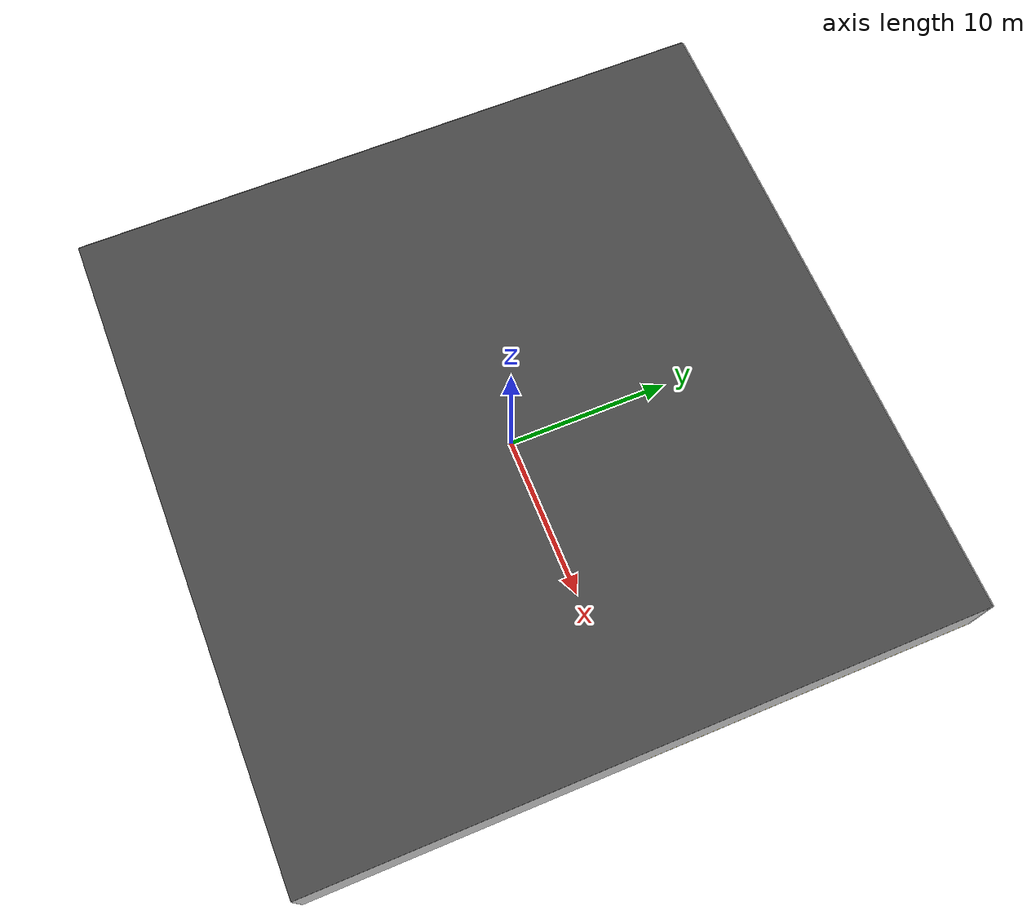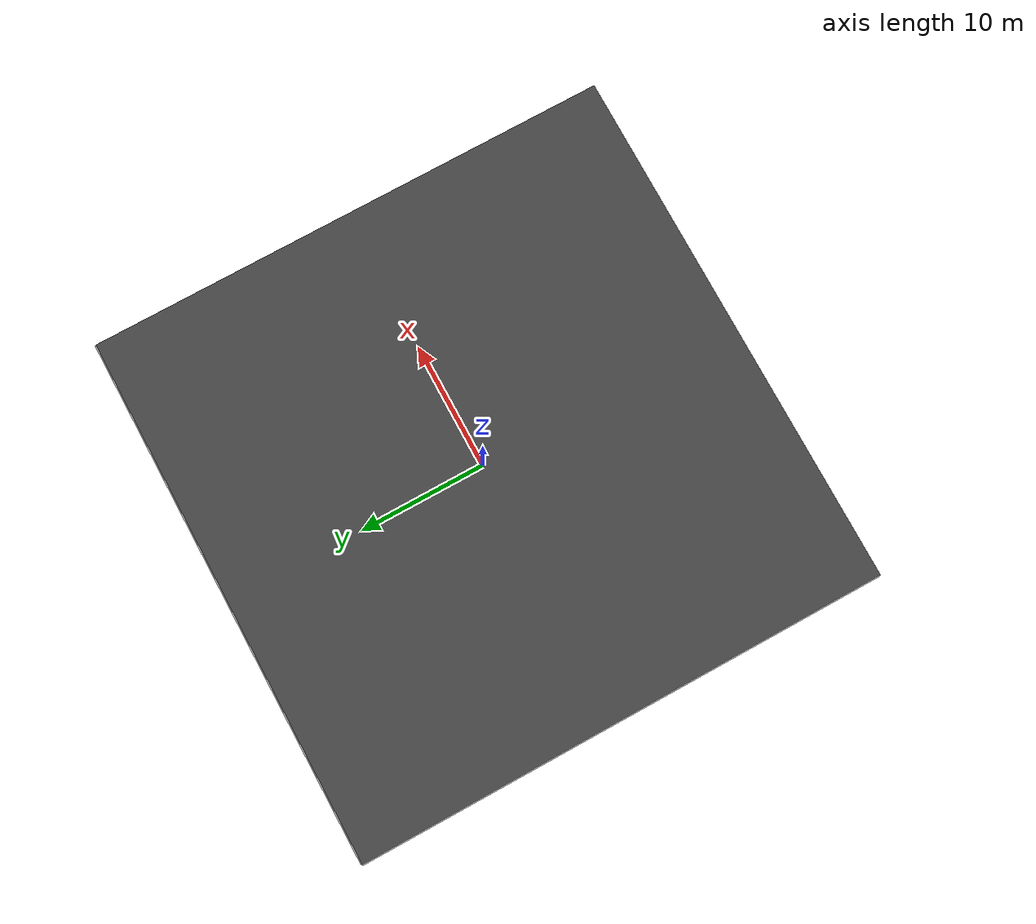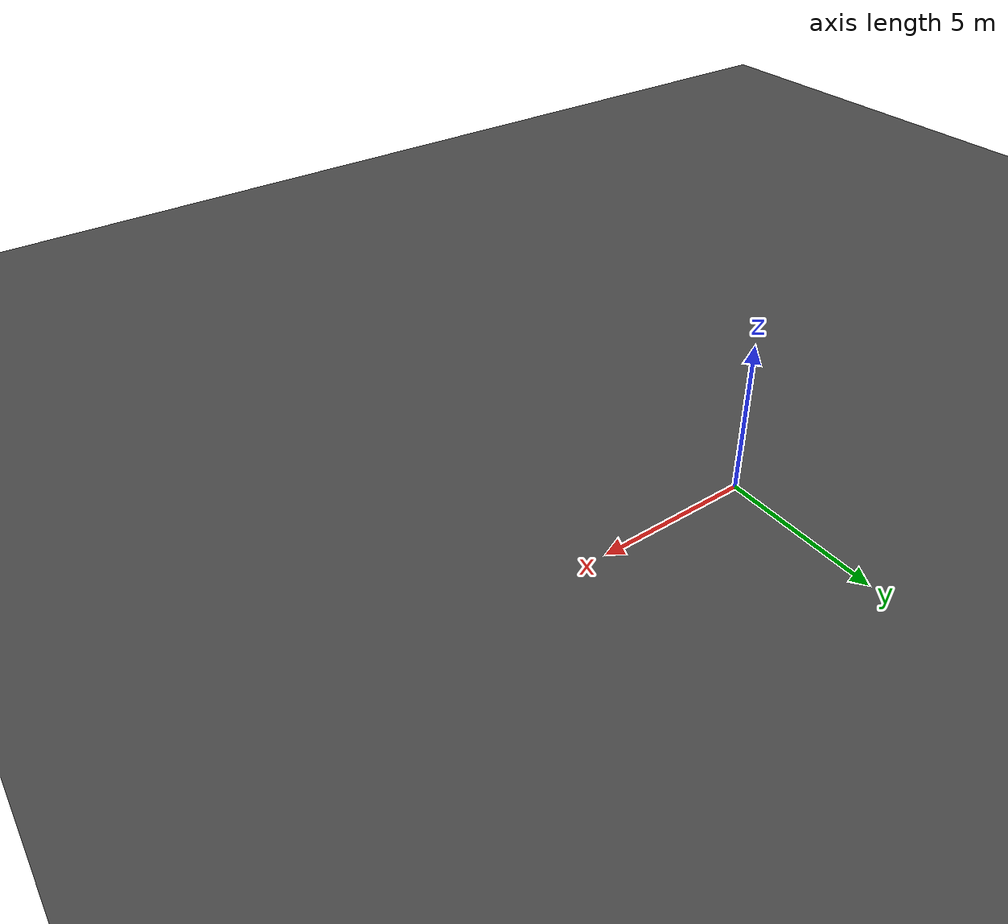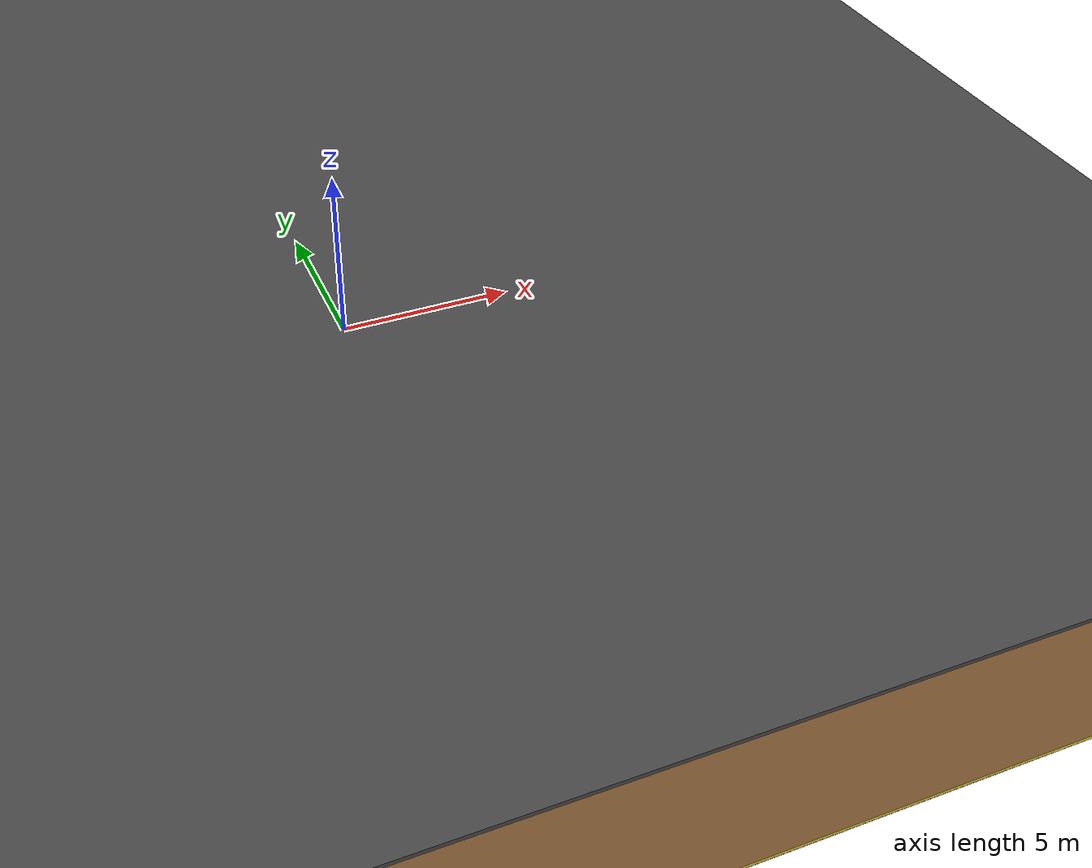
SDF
<sdf version="1.4">
 <world name="default">
  <physics type="ode">
   <max_step_size>0.001</max_step_size>
   <real_time_factor>1</real_time_factor>
   <real_time_update_rate>1000</real_time_update_rate>
   <gravity>0 0 -9.8</gravity>
  </physics>
  <scene><ambient>0.4 0.4 0.4 1</ambient><background>0.7 0.7 0.7 1</background><shadows>1</shadows></scene>
  <model name="Surrounding">
   <static>1</static>
   <link name="Ceiling">
    <collision name="Ceiling_Collision"><geometry><box><size>40 40 0.1</size></box></geometry></collision>
    <visual name="Ceiling_Visual">
     <geometry><box><size>40 40 0.1</size></box></geometry>
     <material>
      <script><uri>file://media/materials/scripts/gazebo.material</uri><name>Gazebo/Road</name></script>
     </material>
    </visual>
    <pose>0 0 4.05 0 0 0</pose>
   </link>
   <link name="Wall_South">
    <collision name="Wall_South_Collision">
     <geometry><box><size>40 0 4</size></box></geometry>
     <pose>0 0 2 0 -0 0</pose>
    </collision>
    <visual name="Wall_South_Visual">
     <pose>0 0 2 0 -0 0</pose>
     <geometry><box><size>40 0 4</size></box></geometry>
     <material>
      <script><uri>file://media/materials/scripts/gazebo.material</uri><name>Gazebo/Wood</name></script>
     </material>
    </visual>
    <velocity_decay><linear>0</linear><angular>0</angular></velocity_decay>
    <pose>0 -20 0 0 -0 0</pose>
   </link>
   <link name="Wall_East">
    <collision name="Wall_21_Collision">
     <geometry><box><size>40 0 4</size></box></geometry>
     <pose>0 0 2 0 -0 0</pose>
    </collision>
    <visual name="Wall_21_Visual">
     <pose>0 0 2 0 -0 0</pose>
     <geometry><box><size>40 0 4</size></box></geometry>
     <material>
      <script><uri>file://media/materials/scripts/gazebo.material</uri><name>Gazebo/LightOn</name></script>
     </material>
    </visual>
    <velocity_decay><linear>0</linear><angular>0</angular></velocity_decay>
    <pose>20 0 0 0 -0 1.5708</pose>
   </link>
   <link name="Wall_North">
    <collision name="Wall_22_Collision">
     <geometry><box><size>40 0.2 4</size></box></geometry>
     <pose>0 0 2 0 -0 0</pose>
    </collision>
    <visual name="Wall_22_Visual">
     <pose>0 0 2 0 -0 0</pose>
     <geometry><box><size>40 0.2 4</size></box></geometry>
     <material>
      <script><uri>file://media/materials/scripts/gazebo.material</uri><name>Gazebo/WhiteGlow</name></script>
     </material>
    </visual>
    <velocity_decay><linear>0</linear><angular>0</angular></velocity_decay>
    <pose>0 20 0 0 -0 0</pose>
   </link>
   <link name="Wall_West">
    <collision name="Wall_23_Collision">
     <geometry><box><size>40 0.2 4</size></box></geometry>
     <pose>0 0 2 0 -0 0</pose>
    </collision>
    <visual name="Wall_23_Visual">
     <pose>0 0 2 0 -0 0</pose>
     <geometry><box><size>40 0.2 4</size></box></geometry>
     <material>
      <script><uri>file://media/materials/scripts/gazebo.material</uri><name>Gazebo/GreyGradientSky</name></script>
     </material>
    </visual>
    <velocity_decay><linear>0</linear><angular>0</angular></velocity_decay>
    <pose>-20 0 0 0 0 -1.5708</pose>
   </link>
   <link name="Ground_link">
    <collision name="collision">
     <pose>0 0 .05 0 -0 0</pose>
     <geometry><box><size>40 40 0.1</size></box></geometry>
    </collision>
    <visual name="visual">
     <pose>0 0 .05 0 -0 0</pose>
     <geometry><box><size>40 40 0.1</size></box></geometry>
     <material>
      <script><uri>file://media/materials/scripts/gazebo.material</uri><name>Gazebo/ZincYellow</name></script>
     </material>
    </visual>
   </link>
   <static>1</static>
  </model>
  <spherical_coordinates>
   <surface_model>EARTH_WGS84</surface_model>
   <latitude_deg>0</latitude_deg>
   <longitude_deg>0</longitude_deg>
   <elevation>0</elevation>
   <heading_deg>0</heading_deg>
  </spherical_coordinates>
  <light name="lightball_0" type="diffuse">
   <diffuse>0.8 0.8 0.8 1</diffuse>
   <specular>0.2 0.2 0.2 1</specular>
   <attenuation>
    <range>100</range>
    <constant>0.7</constant>
    <linear>0.01</linear>
    <quadratic>0.001</quadratic>
   </attenuation>
   <direction>-0.5 0.1 -0.9</direction>
   <pose>-12.8845838725 8.78774440828 2.93513330116 0 0 0</pose>
  </light>
  <light name="lightball_1" type="diffuse">
   <diffuse>0.8 0.8 0.8 1</diffuse>
   <specular>0.2 0.2 0.2 1</specular>
   <attenuation>
    <range>100</range>
    <constant>0.7</constant>
    <linear>0.01</linear>
    <quadratic>0.001</quadratic>
   </attenuation>
   <direction>-0.5 0.1 -0.9</direction>
   <pose>-19.3410043088 8.39411014991 0.715213128344 0 0 0</pose>
  </light>
  <light name="lightball_2" type="diffuse">
   <diffuse>0.8 0.8 0.8 1</diffuse>
   <specular>0.2 0.2 0.2 1</specular>
   <attenuation>
    <range>100</range>
    <constant>0.7</constant>
    <linear>0.01</linear>
    <quadratic>0.001</quadratic>
   </attenuation>
   <direction>-0.5 0.1 -0.9</direction>
   <pose>-12.9372333305 -7.92417220898 0.551895140833 0 0 0</pose>
  </light>
  <light name="lightball_3" type="diffuse">
   <diffuse>0.8 0.8 0.8 1</diffuse>
   <specular>0.2 0.2 0.2 1</specular>
   <attenuation>
    <range>100</range>
    <constant>0.7</constant>
    <linear>0.01</linear>
    <quadratic>0.001</quadratic>
   </attenuation>
   <direction>-0.5 0.1 -0.9</direction>
   <pose>10.3798626184 -10.0602136918 0.7992734015 0 0 0</pose>
  </light>
  <light name="lightball_4" type="diffuse">
   <diffuse>0.8 0.8 0.8 1</diffuse>
   <specular>0.2 0.2 0.2 1</specular>
   <attenuation>
    <range>100</range>
    <constant>0.7</constant>
    <linear>0.01</linear>
    <quadratic>0.001</quadratic>
   </attenuation>
   <direction>-0.5 0.1 -0.9</direction>
   <pose>-0.83420628927 19.0133420374 0.886964426198 0 0 0</pose>
  </light>
  <light name="lightball_5" type="diffuse">
   <diffuse>0.8 0.8 0.8 1</diffuse>
   <specular>0.2 0.2 0.2 1</specular>
   <attenuation>
    <range>100</range>
    <constant>0.7</constant>
    <linear>0.01</linear>
    <quadratic>0.001</quadratic>
   </attenuation>
   <direction>-0.5 0.1 -0.9</direction>
   <pose>13.6498984363 6.10275379994 2.39946023537 0 0 0</pose>
  </light>
  <light name="lightball_6" type="diffuse">
   <diffuse>0.8 0.8 0.8 1</diffuse>
   <specular>0.2 0.2 0.2 1</specular>
   <attenuation>
    <range>100</range>
    <constant>0.7</constant>
    <linear>0.01</linear>
    <quadratic>0.001</quadratic>
   </attenuation>
   <direction>-0.5 0.1 -0.9</direction>
   <pose>-1.64263921584 -0.34805800586 2.0779484244 0 0 0</pose>
  </light>
  <light name="lightball_7" type="diffuse">
   <diffuse>0.8 0.8 0.8 1</diffuse>
   <specular>0.2 0.2 0.2 1</specular>
   <attenuation>
    <range>100</range>
    <constant>0.7</constant>
    <linear>0.01</linear>
    <quadratic>0.001</quadratic>
   </attenuation>
   <direction>-0.5 0.1 -0.9</direction>
   <pose>16.9029406998 -1.11703667637 0.568538300801 0 0 0</pose>
  </light>
  <light name="lightball_8" type="diffuse">
   <diffuse>0.8 0.8 0.8 1</diffuse>
   <specular>0.2 0.2 0.2 1</specular>
   <attenuation>
    <range>100</range>
    <constant>0.7</constant>
    <linear>0.01</linear>
    <quadratic>0.001</quadratic>
   </attenuation>
   <direction>-0.5 0.1 -0.9</direction>
   <pose>2.54143978721 -12.0898146015 1.80287567115 0 0 0</pose>
  </light>
  <light name="lightball_9" type="diffuse">
   <diffuse>0.8 0.8 0.8 1</diffuse>
   <specular>0.2 0.2 0.2 1</specular>
   <attenuation>
    <range>100</range>
    <constant>0.7</constant>
    <linear>0.01</linear>
    <quadratic>0.001</quadratic>
   </attenuation>
   <direction>-0.5 0.1 -0.9</direction>
   <pose>-1.29602675488 -15.2205509224 1.65698107039 0 0 0</pose>
  </light>
  <include><uri>model://cabinet</uri><pose>-10.5802068469 -14.6411641737 0 0 0 1.11299193792</pose></include>
  <include><uri>model://cabinet</uri><pose>-10.482935463 -7.8359405263 0 0 0 1.17556427223</pose></include>
  <include>
   <uri>model://robocup_3Dsim_goal</uri>
   <pose>-9.24092998721 -2.41356180023 0 0 0 2.81506157801</pose>
  </include>
  <include><uri>model://cabinet</uri><pose>-9.16457373829 16.3517550937 0 0 0 1.88940583742</pose></include>
  <include><uri>model://cabinet</uri><pose>-4.42832530007 -15.2283716407 0 0 0 2.55789472367</pose></include>
  <include><uri>model://cabinet</uri><pose>-6.02454543674 10.1613197808 0 0 0 0.720208546075</pose></include>
  <include>
   <uri>model://construction_cone</uri>
   <pose>-0.591805212378 -11.8186950699 0 0 0 2.51243812115</pose>
  </include>
  <include>
   <uri>model://robocup_3Dsim_goal</uri>
   <pose>0.864009895161 -0.24502016631 0 0 0 0.0870463836543</pose>
  </include>
  <include>
   <uri>model://robocup_3Dsim_goal</uri>
   <pose>4.329631424 -12.2428358991 0 0 0 3.05728052806</pose>
  </include>
  <include>
   <uri>model://robocup_3Dsim_goal</uri>
   <pose>3.16135905784 -6.18740521548 0 0 0 0.519048754958</pose>
  </include>
  <include>
   <uri>model://robocup_3Dsim_goal</uri>
   <pose>3.30026823499 13.208252782 0 0 0 2.7567353351</pose>
  </include>
  <include><uri>model://table</uri><pose>3.60592948122 16.6403781446 0 0 0 2.64207516989</pose></include>
  <include>
   <uri>model://construction_cone</uri>
   <pose>3.77253314631 17.652846951 0 0 0 0.846219833008</pose>
  </include>
  <include><uri>model://table</uri><pose>7.22789280241 -18.3295142333 0 0 0 3.07099116867</pose></include>
  <include><uri>model://cabinet</uri><pose>9.88659549796 -3.15016416141 0 0 0 0.393758592438</pose></include>
  <include>
   <uri>model://textured_shapes</uri>
   <pose>9.05606360958 15.2390629904 0 0 0 1.82284182356</pose>
  </include>
  <include><uri>model://table</uri><pose>8.44952908712 18.8826310327 0 0 0 1.80708412987</pose></include>
  <include>
   <uri>model://robocup_3Dsim_goal</uri>
   <pose>14.8670947222 -2.60058886813 0 0 0 0.0513559057956</pose>
  </include>
  <include><uri>model://cabinet</uri><pose>19.0120759265 18.3710995431 0 0 0 0.481254927294</pose></include>
 </world>
</sdf>

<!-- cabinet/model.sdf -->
<sdf version="1.5">
  <model name="cabinet">
    <static>true</static>
    <link name="cabinet_bottom_plate">
      <inertial>
        <pose>0 0 -1 0 0 0</pose>
        <inertia>
          <ixx>2.050000</ixx>
          <ixy>0</ixy>
          <ixz>0</ixz>
          <iyy>2.050000</iyy>
          <iyz>0</iyz>
          <izz>2.050000</izz>
        </inertia>
        <mass>25.000000</mass>
      </inertial>
      <collision name="cabinet_bottom_plate_geom">
        <pose>0 0 0.010000 0 0 0</pose>
        <geometry>
          <box>
            <size>0.450000 0.450000 0.020000</size>
          </box>
        </geometry>
      </collision>
      <visual name="cabinet_bottom_plate_geom_visual">
        <pose>0 0 0.010000 0 0 0</pose>
        <geometry>
          <box>
            <size>0.450000 0.450000 0.020000</size>
          </box>
        </geometry>
        <material>
          <script>
            <uri>model://media/materials/scripts/gazebo.material</uri>
            <name>Gazebo/Wood</name>
          </script>
        </material>
      </visual>
      <collision name="cabinet_bottom_plate_geom_cabinet_back_plate">
        <pose>0.235000 0 0.510000 0 0 0</pose>
        <geometry>
          <box>
            <size>0.020000 0.450000 1.020000</size>
          </box>
        </geometry>
      </collision>
      <visual name="cabinet_bottom_plate_geom_cabinet_back_plate_visual">
        <pose>0.235000 0 0.510000 0 0 0</pose>
        <geometry>
          <box>
            <size>0.020000 0.450000 1.020000</size>
          </box>
        </geometry>
        <material>
          <script>
            <uri>model://media/materials/scripts/gazebo.material</uri>
            <name>Gazebo/Wood</name>
          </script>
        </material>
      </visual>
      <collision name="cabinet_bottom_plate_geom_cabinet_left_plate">
        <pose>0 0.235000 0.510000 0 0 0</pose>
        <geometry>
          <box>
            <size>0.450000 0.020000 1.020000</size>
          </box>
        </geometry>
      </collision>
      <visual name="cabinet_bottom_plate_geom_cabinet_left_plate_visual">
        <pose>0 0.235000 0.510000 0 0 0</pose>
        <geometry>
          <box>
            <size>0.450000 0.020000 1.020000</size>
          </box>
        </geometry>
        <material>
          <script>
            <uri>model://media/materials/scripts/gazebo.material</uri>
            <name>Gazebo/Wood</name>
          </script>
        </material>
      </visual>
      <collision name="cabinet_bottom_plate_geom_cabinet_middle_plate">
        <pose>0 0 0.510000 0 0 0</pose>
        <geometry>
          <box>
            <size>0.450000 0.450000 0.020000</size>
          </box>
        </geometry>
      </collision>
      <visual name="cabinet_bottom_plate_geom_cabinet_middle_plate_visual">
        <pose>0 0 0.510000 0 0 0</pose>
        <geometry>
          <box>
            <size>0.450000 0.450000 0.020000</size>
          </box>
        </geometry>
        <material>
          <script>
            <uri>model://media/materials/scripts/gazebo.material</uri>
            <name>Gazebo/Wood</name>
          </script>
        </material>
      </visual>
      <collision name="cabinet_bottom_plate_geom_cabinet_right_plate">
        <pose>0 -0.235000 0.510000 0 0 0</pose>
        <geometry>
          <box>
            <size>0.450000 0.020000 1.020000</size>
          </box>
        </geometry>
      </collision>
      <visual name="cabinet_bottom_plate_geom_cabinet_right_plate_visual">
        <pose>0 -0.235000 0.510000 0 0 0</pose>
        <geometry>
          <box>
            <size>0.450000 0.020000 1.020000</size>
          </box>
        </geometry>
        <material>
          <script>
            <uri>model://media/materials/scripts/gazebo.material</uri>
            <name>Gazebo/Wood</name>
          </script>
        </material>
      </visual>
      <collision name="cabinet_bottom_plate_geom_cabinet_top_plate">
        <pose>0 0 1.010000 0 0 0</pose>
        <geometry>
          <box>
            <size>0.450000 0.450000 0.020000</size>
          </box>
        </geometry>
      </collision>
      <visual name="cabinet_bottom_plate_geom_cabinet_top_plate_visual">
        <pose>0 0 1.010000 0 0 0</pose>
        <geometry>
          <box>
            <size>0.450000 0.450000 0.020000</size>
          </box>
        </geometry>
        <material>
          <script>
            <uri>model://media/materials/scripts/gazebo.material</uri>
            <name>Gazebo/Wood</name>
          </script>
        </material>
      </visual>
    </link>
  </model>
</sdf>

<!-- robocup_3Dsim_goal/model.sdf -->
<sdf version="1.5">
  <model name="robocup_3d_goal">
    <static>true</static>
    <link name="left_post">
      <pose>0 1.05 0.45 0 0 0</pose>
      <collision name="collision">
        <geometry>
          <cylinder>
            <radius>0.05</radius>
            <length>0.9</length>
          </cylinder>
        </geometry>
      </collision>
      <visual name="visual">
        <geometry>
          <cylinder>
            <radius>0.05</radius>
            <length>0.9</length>
          </cylinder>
        </geometry>
        <material>
          <script>
            <uri>file://media/materials/scripts/gazebo.material</uri>
            <name>Gazebo/ZincYellow</name>
          </script>
        </material>
      </visual>
    </link>
    <link name="left_support_horiz_lower">
      <pose>0.30 1.05 0.01 0 0 0</pose>
      <collision name="collision">
        <geometry>
          <box>
            <size>0.50 0.02 0.02</size>
          </box>
        </geometry>
      </collision>
      <visual name="visual">
        <geometry>
          <box>
            <size>0.50 0.02 0.02</size>
          </box>
        </geometry>
        <material>
          <script>
            <uri>file://media/materials/scripts/gazebo.material</uri>
            <name>Gazebo/White</name>
          </script>
        </material>
      </visual>
    </link>
    <link name="left_support_horiz_upper">
      <pose>0.30 1.05 0.79 0 0 0</pose>
      <collision name="collision">
        <geometry>
          <box>
            <size>0.50 0.02 0.02</size>
          </box>
        </geometry>
      </collision>
      <visual name="visual">
        <geometry>
          <box>
            <size>0.50 0.02 0.02</size>
          </box>
        </geometry>
        <material>
          <script>
            <uri>file://media/materials/scripts/gazebo.material</uri>
            <name>Gazebo/White</name>
          </script>
        </material>
      </visual>
    </link>
    <link name="left_support_vertical">
      <pose>0.56 1.05 0.4 0 1.5708 0</pose>
      <collision name="collision">
        <geometry>
          <box>
            <size>0.80 0.02 0.02</size>
          </box>
        </geometry>
      </collision>
      <visual name="visual">
        <geometry>
          <box>
            <size>0.80 0.02 0.02</size>
          </box>
        </geometry>
        <material>
          <script>
            <uri>file://media/materials/scripts/gazebo.material</uri>
            <name>Gazebo/White</name>
          </script>
        </material>
      </visual>
    </link>
    <link name="right_support_horiz_lower">
      <pose>0.30 -1.05 0.01 0 0 0</pose>
      <collision name="collision">
        <geometry>
          <box>
            <size>0.50 0.02 0.02</size>
          </box>
        </geometry>
      </collision>
      <visual name="visual">
        <geometry>
          <box>
            <size>0.50 0.02 0.02</size>
          </box>
        </geometry>
        <material>
          <script>
            <uri>file://media/materials/scripts/gazebo.material</uri>
            <name>Gazebo/White</name>
          </script>
        </material>
      </visual>
    </link>
    <link name="right_support_horiz_upper">
      <pose>0.30 -1.05 0.79 0 0 0</pose>
      <collision name="collision">
        <geometry>
          <box>
            <size>0.50 0.02 0.02</size>
          </box>
        </geometry>
      </collision>
      <visual name="visual">
        <geometry>
          <box>
            <size>0.50 0.02 0.02</size>
          </box>
        </geometry>
        <material>
          <script>
            <uri>file://media/materials/scripts/gazebo.material</uri>
            <name>Gazebo/White</name>
          </script>
        </material>
      </visual>
    </link>
    <link name="right_support_vertical">
      <pose>0.56 -1.05 0.4 0 1.5708 0</pose>
      <collision name="collision">
        <geometry>
          <box>
            <size>0.80 0.02 0.02</size>
          </box>
        </geometry>
      </collision>
      <visual name="visual">
        <geometry>
          <box>
            <size>0.80 0.02 0.02</size>
          </box>
        </geometry>
        <material>
          <script>
            <uri>file://media/materials/scripts/gazebo.material</uri>
            <name>Gazebo/White</name>
          </script>
        </material>
      </visual>
    </link>
    <link name="center_support_horiz_lower">
      <pose>0.56 0 0.01 0 1.5708 0</pose>
      <collision name="collision">
        <geometry>
          <box>
            <size>0.02 2.08 0.02</size>
          </box>
        </geometry>
      </collision>
      <visual name="visual">
        <geometry>
          <box>
            <size>0.02 2.08 0.02</size>
          </box>
        </geometry>
        <material>
          <script>
            <uri>file://media/materials/scripts/gazebo.material</uri>
            <name>Gazebo/White</name>
          </script>
        </material>
      </visual>
    </link>
    <link name="center_support_horiz_upper">
      <pose>0.56 0 0.79 0 1.5708 0</pose>
      <collision name="collision">
        <geometry>
          <box>
            <size>0.02 2.08 0.02</size>
          </box>
        </geometry>
      </collision>
      <visual name="visual">
        <geometry>
          <box>
            <size>0.02 2.08 0.02</size>
          </box>
        </geometry>
        <material>
          <script>
            <uri>file://media/materials/scripts/gazebo.material</uri>
            <name>Gazebo/White</name>
          </script>
        </material>
      </visual>
    </link>
    <link name="right_post">
      <pose>0 -1.05 0.45 0 0 0</pose>
      <collision name="collision">
        <geometry>
          <cylinder>
            <radius>0.05</radius>
            <length>0.9</length>
          </cylinder>
        </geometry>
      </collision>
      <visual name="visual">
        <geometry>
          <cylinder>
            <radius>0.05</radius>
            <length>0.9</length>
          </cylinder>
        </geometry>
        <material>
          <script>
            <uri>file://media/materials/scripts/gazebo.material</uri>
            <name>Gazebo/ZincYellow</name>
          </script>
        </material>
      </visual>
    </link>
    <link name="crossbar">
      <pose>0 0 0.85 1.57 1.57 0</pose>
      <collision name="collision">
        <geometry>
          <cylinder>
            <radius>0.05</radius>
            <length>2.0</length>
          </cylinder>
        </geometry>
      </collision>
      <visual name="visual">
        <geometry>
          <cylinder>
            <radius>0.05</radius>
            <length>2.0</length>
          </cylinder>
        </geometry>
        <material>
          <script>
            <uri>file://media/materials/scripts/gazebo.material</uri>
            <name>Gazebo/ZincYellow</name>
          </script>
        </material>
      </visual>
    </link>
    <link name="center_net">
      <pose>0.56 0 0.40 0 0 0</pose>
      <collision name="collision">
        <geometry>
          <box>
            <size>0.01 2.1 0.80</size>
          </box>
        </geometry>
      </collision>
      <visual name="visual">
        <geometry>
          <box>
            <size>0.01 2.1 0.80</size>
          </box>
        </geometry>
        <material>
          <script>
            <uri>model://../model_source/models/robocup09_spl_field/materials/scripts/</uri>
            <uri>model://../model_source/models/robocup09_spl_field/materials/textures/</uri>
            <name>RoboCup/Net</name>
          </script>
        </material>
      </visual>
    </link>
    <link name="left_net">
      <pose>0.30 1.05 0.40 0 0 0</pose>
      <collision name="collision">
        <geometry>
          <box>
            <size>0.50 0.01 0.76</size>
          </box>
        </geometry>
      </collision>
      <visual name="visual">
        <geometry>
          <box>
            <size>0.50 0.01 0.76</size>
          </box>
        </geometry>
        <material>
          <script>
            <uri>model://../model_source/models/robocup09_spl_field/materials/scripts/</uri>
            <uri>model://../model_source/models/robocup09_spl_field/materials/textures/</uri>
            <name>RoboCup/Net</name>
          </script>
        </material>
      </visual>
    </link>
    <link name="right_net">
      <pose>0.30 -1.05 0.40 0 0 0</pose>
      <collision name="collision">
        <geometry>
          <box>
            <size>0.50 0.01 0.76</size>
          </box>
        </geometry>
      </collision>
      <visual name="visual">
        <geometry>
          <box>
            <size>0.50 0.01 0.76</size>
          </box>
        </geometry>
        <material>
          <script>
            <uri>model://../model_source/models/robocup09_spl_field/materials/scripts/</uri>
            <uri>model://../model_source/models/robocup09_spl_field/materials/textures/</uri>
            <name>RoboCup/Net</name>
          </script>
        </material>
      </visual>
    </link>
  </model>
</sdf>

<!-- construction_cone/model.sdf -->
<sdf version="1.5">
  <model name="Construction Cone">
    <link name="link">
      <collision name="collision">
        <geometry>
          <mesh>
            <scale>10 10 10</scale>
            <uri>file://isr-testbed/construction_cone/meshes/construction_cone.dae</uri>
          </mesh>
        </geometry>
      </collision>
      <visual name="visual">
        <geometry>
          <mesh>
            <scale>10 10 10</scale>
            <uri>file://isr-testbed/construction_cone/meshes/construction_cone.dae</uri>
          </mesh>
        </geometry>
      </visual>
    </link>
  </model>
</sdf>

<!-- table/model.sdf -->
<sdf version="1.5">
  <model name="table">
    <static>true</static>
    <link name="link">
      <collision name="surface">
        <pose>0 0 1.0 0 0 0</pose>
        <geometry>
          <box>
            <size>1.5 0.8 0.03</size>
          </box>
        </geometry>
        <surface>
          <friction>
            <ode>
              <mu>0.6</mu>
              <mu2>0.6</mu2>
            </ode>
          </friction>
        </surface>
      </collision>
      <visual name="visual1">
        <pose>0 0 1.0 0 0 0</pose>
        <geometry>
          <box>
            <size>1.5 0.8 0.03</size>
          </box>
        </geometry>
        <material>
          <script>
            <uri>model://media/materials/scripts/gazebo.material</uri>
            <name>Gazebo/Wood</name>
          </script>
        </material>
      </visual>
      <collision name="front_left_leg">
        <pose>0.68 0.38 0.5 0 0 0</pose>
        <geometry>
          <cylinder>
            <radius>0.02</radius>
            <length>1.0</length>
          </cylinder>
        </geometry>
      </collision>
      <visual name="front_left_leg">
        <pose>0.68 0.38 0.5 0 0 0</pose>
        <geometry>
          <cylinder>
            <radius>0.02</radius>
            <length>1.0</length>
          </cylinder>
        </geometry>
        <material>
          <script>
            <uri>model://media/materials/scripts/gazebo.material</uri>
            <name>Gazebo/Grey</name>
          </script>
        </material>
      </visual>
      <collision name="front_right_leg">
        <pose>0.68 -0.38 0.5 0 0 0</pose>
        <geometry>
          <cylinder>
            <radius>0.02</radius>
            <length>1.0</length>
          </cylinder>
        </geometry>
      </collision>
      <visual name="front_right_leg">
        <pose>0.68 -0.38 0.5 0 0 0</pose>
        <geometry>
          <cylinder>
            <radius>0.02</radius>
            <length>1.0</length>
          </cylinder>
        </geometry>
        <material>
          <script>
            <uri>model://media/materials/scripts/gazebo.material</uri>
            <name>Gazebo/Grey</name>
          </script>
        </material>
      </visual>
      <collision name="back_right_leg">
        <pose>-0.68 -0.38 0.5 0 0 0</pose>
        <geometry>
          <cylinder>
            <radius>0.02</radius>
            <length>1.0</length>
          </cylinder>
        </geometry>
      </collision>
      <visual name="back_right_leg">
        <pose>-0.68 -0.38 0.5 0 0 0</pose>
        <geometry>
          <cylinder>
            <radius>0.02</radius>
            <length>1.0</length>
          </cylinder>
        </geometry>
        <material>
          <script>
            <uri>model://media/materials/scripts/gazebo.material</uri>
            <name>Gazebo/Grey</name>
          </script>
        </material>
      </visual>
      <collision name="back_left_leg">
        <pose>-0.68 0.38 0.5 0 0 0</pose>
        <geometry>
          <cylinder>
            <radius>0.02</radius>
            <length>1.0</length>
          </cylinder>
        </geometry>
      </collision>
      <visual name="back_left_leg">
        <pose>-0.68 0.38 0.5 0 0 0</pose>
        <geometry>
          <cylinder>
            <radius>0.02</radius>
            <length>1.0</length>
          </cylinder>
        </geometry>
        <material>
          <script>
            <uri>model://media/materials/scripts/gazebo.material</uri>
            <name>Gazebo/Grey</name>
          </script>
        </material>
      </visual>
    </link>
  </model>
</sdf>

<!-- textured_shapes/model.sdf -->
<sdf version="1.6">
  <model name="textured_shapes">
    <pose>0 0 0.5 0 0 0</pose>
    <link name="box">
      <pose>0 -1.5 0 0 0 0</pose>
      <collision name="collision">
        <geometry>
          <box>
            <size>1 1 1</size>
          </box>
        </geometry>
      </collision>
      <visual name="visual">
        <geometry>
          <box>
            <size>1 1 1</size>
          </box>
        </geometry>
        <material>
          <script>
            <uri>model://../model_source/models/textured_shapes/materials/scripts</uri>
            <uri>model://../model_source/models/textured_shapes/materials/textures</uri>
            <name>TexturedShape/Squares</name>
          </script>
        </material>
      </visual>
    </link>
    <link name="sphere">
      <collision name="collision">
        <geometry>
          <sphere>
            <radius>0.5</radius>
          </sphere>
        </geometry>
      </collision>
      <visual name="visual">
        <geometry>
          <sphere>
            <radius>0.5</radius>
          </sphere>
        </geometry>
        <material>
          <script>
            <uri>model://../model_source/models/textured_shapes/materials/scripts</uri>
            <uri>model://../model_source/models/textured_shapes/materials/textures</uri>
            <name>TexturedShape/Squares</name>
          </script>
        </material>
      </visual>
    </link>
    <link name="cylinder">
      <pose>0 1.5 0 0 0 0</pose>
      <collision name="collision">
        <geometry>
          <cylinder>
            <radius>0.5</radius>
            <length>1</length>
          </cylinder>
        </geometry>
      </collision>
      <visual name="visual">
        <geometry>
          <cylinder>
            <radius>0.5</radius>
            <length>1</length>
          </cylinder>
        </geometry>
        <material>
          <script>
            <uri>model://../model_source/models/textured_shapes/materials/scripts</uri>
            <uri>model://../model_source/models/textured_shapes/materials/textures</uri>
            <name>TexturedShape/Squares</name>
          </script>
        </material>
      </visual>
    </link>
  </model>
</sdf>
